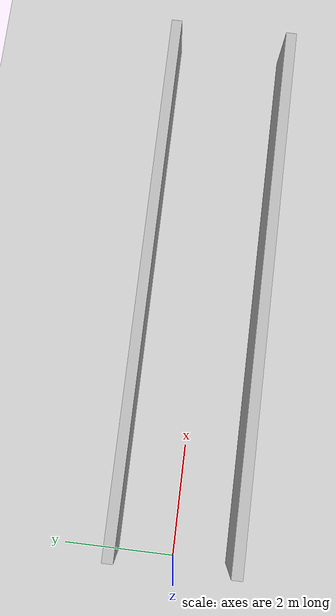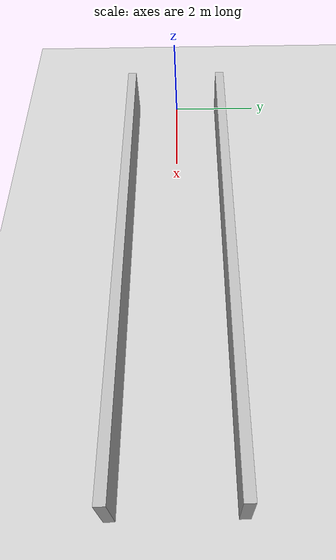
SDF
<?xml version="1.0"?>
<sdf version="1.6">
  <world name="v2-04g-corridor-s4911">
    <gravity>0 0 -9.81</gravity>
    <physics name="v2_deterministic" type="ode">
      <max_step_size>0.002</max_step_size>
      <real_time_update_rate>500</real_time_update_rate>
    </physics>
    <include>
      <uri>model://sun</uri>
    </include>
    <include>
      <uri>model://ground_plane</uri>
    </include>
    <model name="corridor-left">
      <static>true</static>
      <pose>4.999740076 1.110322287 0.600000000 0 0 0.001531882</pose>
      <link name="link">
        <collision name="collision">
          <geometry>
            <box>
              <size>10.000000 0.200000 1.200000</size>
            </box>
          </geometry>
        </collision>
        <visual name="visual">
          <geometry>
            <box>
              <size>10.000000 0.200000 1.200000</size>
            </box>
          </geometry>
        </visual>
      </link>
    </model>
    <model name="corridor-right">
      <static>true</static>
      <pose>4.993573934 -1.090624598 0.600000000 0 0 -0.002874350</pose>
      <link name="link">
        <collision name="collision">
          <geometry>
            <box>
              <size>10.000000 0.200000 1.200000</size>
            </box>
          </geometry>
        </collision>
        <visual name="visual">
          <geometry>
            <box>
              <size>10.000000 0.200000 1.200000</size>
            </box>
          </geometry>
        </visual>
      </link>
    </model>
  </world>
</sdf>
